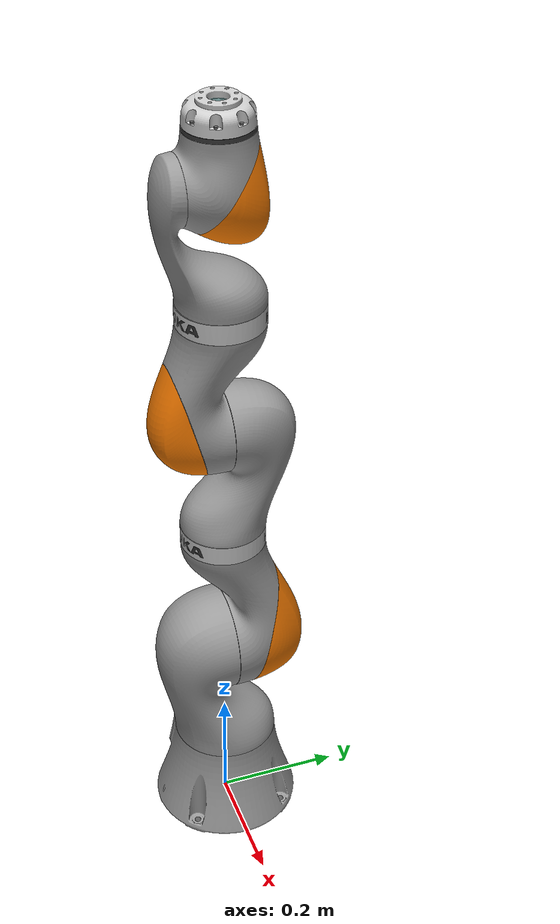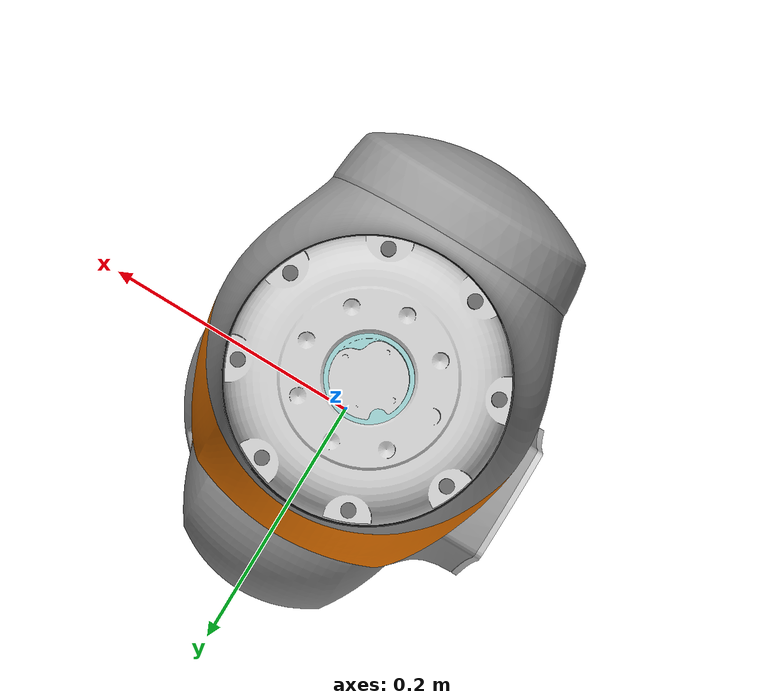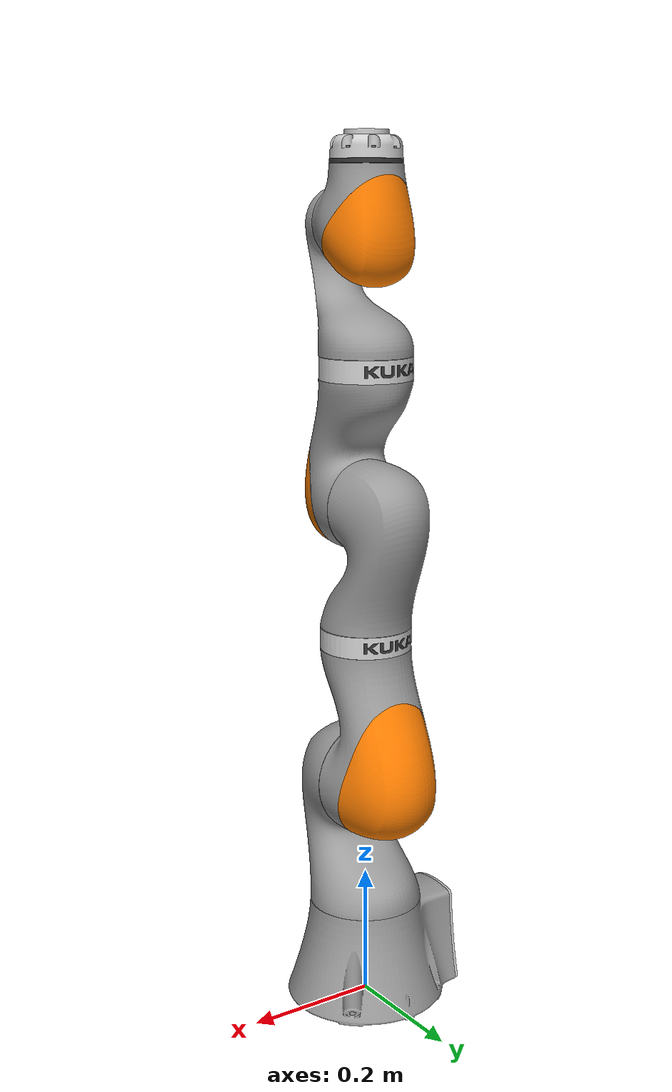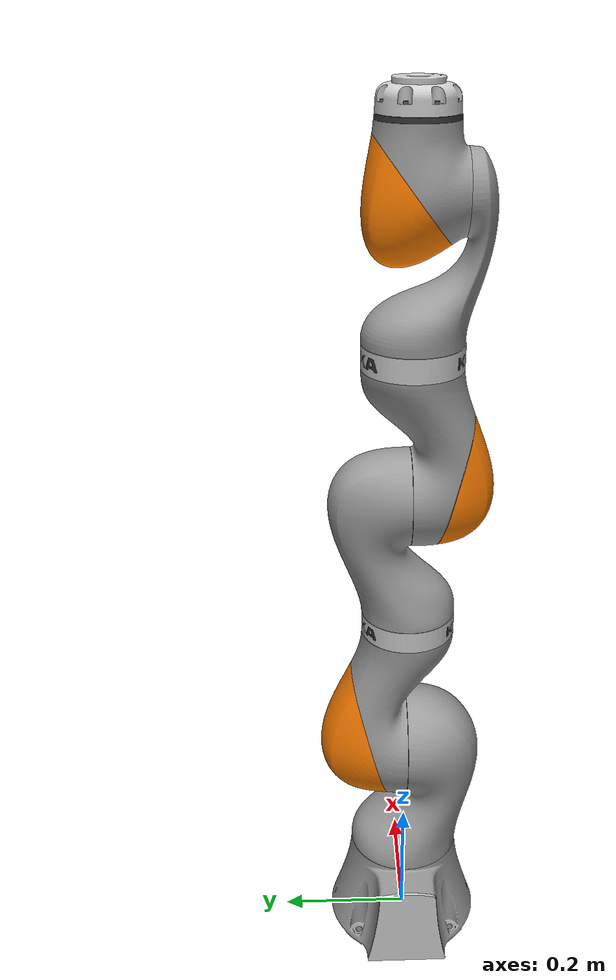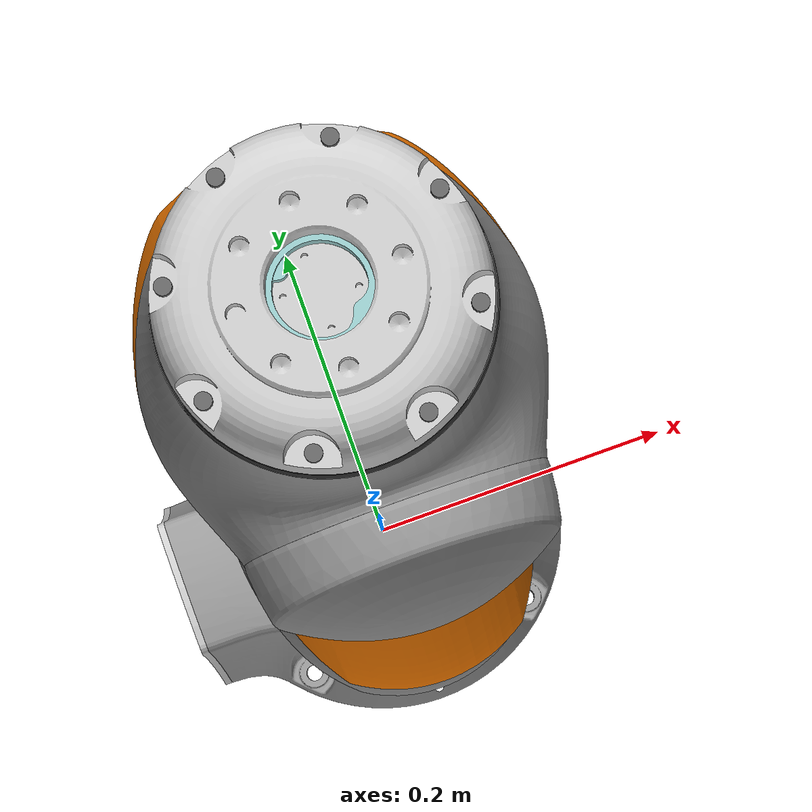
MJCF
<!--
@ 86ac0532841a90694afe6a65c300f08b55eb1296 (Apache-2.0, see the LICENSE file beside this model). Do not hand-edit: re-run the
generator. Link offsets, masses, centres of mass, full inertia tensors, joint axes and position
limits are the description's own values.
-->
<mujoco model="lbr_iiwa14">
  <compiler angle="radian" meshdir="meshes" autolimits="true"/>

  <default>
    <default class="lbr_iiwa14">
      <default class="shoulder">
        <joint damping="20" armature="0.5"/>
        <position kp="10000" kv="300"/>
      </default>
      <default class="elbow">
        <joint damping="10" armature="0.3"/>
        <position kp="6000" kv="150"/>
      </default>
      <default class="wrist">
        <joint damping="5" armature="0.2"/>
        <position kp="3000" kv="60"/>
      </default>
      <default class="hand">
        <joint damping="2" armature="0.1"/>
        <position kp="2000" kv="30"/>
      </default>
      <default class="visual">
        <geom type="mesh" contype="0" conaffinity="0" group="2" material="iiwa_default"/>
      </default>
      <default class="collision">
        <geom type="mesh" group="3" rgba="0.6 0.1 0.1 0.35"/>
      </default>
      <site size="0.005" rgba="0.5 0.5 0.5 0.3" group="4"/>
    </default>
  </default>

  <asset>
    <material name="iiwa_default" rgba="0.75 0.75 0.75 1"/>
    <material name="mat_link_0_visual_0" rgba="0.6 0.6 0.6 1"/>
    <material name="mat_link_0_visual_1" rgba="0.8 0.8 0.8 1"/>
    <material name="mat_link_1_visual_0" rgba="0.6 0.6 0.6 1"/>
    <material name="mat_link_2_visual_0" rgba="0.6 0.6 0.6 1"/>
    <material name="mat_link_2_visual_1" rgba="1 0.498 0 1"/>
    <material name="mat_link_2_visual_2" rgba="0.8 0.8 0.8 1"/>
    <material name="mat_link_2_visual_3" rgba="0.2 0.2 0.2 1"/>
    <material name="mat_link_3_visual_0" rgba="0.6 0.6 0.6 1"/>
    <material name="mat_link_4_visual_0" rgba="0.6 0.6 0.6 1"/>
    <material name="mat_link_4_visual_1" rgba="1 0.498 0 1"/>
    <material name="mat_link_4_visual_2" rgba="0.8 0.8 0.8 1"/>
    <material name="mat_link_4_visual_3" rgba="0.2 0.2 0.2 1"/>
    <material name="mat_link_5_visual_0" rgba="0.6 0.6 0.6 1"/>
    <material name="mat_link_6_visual_0" rgba="0.6 0.6 0.6 1"/>
    <material name="mat_link_6_visual_1" rgba="1 0.498 0 1"/>
    <material name="mat_link_6_visual_2" rgba="0.2 0.2 0.2 1"/>
    <material name="mat_link_7_visual_0" rgba="0.8 0.8 0.8 1"/>
    <material name="mat_link_7_visual_1" rgba="0.4 0.4 0.4 1"/>
    <material name="mat_link_7_visual_2" rgba="0.6 0.8 0.8 1"/>
    <mesh file="link_0_visual_0.obj"/>
    <mesh file="link_0_visual_1.obj"/>
    <mesh file="link_1_visual_0.obj"/>
    <mesh file="link_2_visual_0.obj"/>
    <mesh file="link_2_visual_1.obj"/>
    <mesh file="link_2_visual_2.obj"/>
    <mesh file="link_2_visual_3.obj"/>
    <mesh file="link_3_visual_0.obj"/>
    <mesh file="link_4_visual_0.obj"/>
    <mesh file="link_4_visual_1.obj"/>
    <mesh file="link_4_visual_2.obj"/>
    <mesh file="link_4_visual_3.obj"/>
    <mesh file="link_5_visual_0.obj"/>
    <mesh file="link_6_visual_0.obj"/>
    <mesh file="link_6_visual_1.obj"/>
    <mesh file="link_6_visual_2.obj"/>
    <mesh file="link_7_visual_0.obj"/>
    <mesh file="link_7_visual_1.obj"/>
    <mesh file="link_7_visual_2.obj"/>
    <mesh file="link_0_collision.stl"/>
    <mesh file="link_1_collision.stl"/>
    <mesh file="link_2_collision.stl"/>
    <mesh file="link_3_collision.stl"/>
    <mesh file="link_4_collision.stl"/>
    <mesh file="link_5_collision.stl"/>
    <mesh file="link_6_collision.stl"/>
    <mesh file="link_7_collision.stl"/>
  </asset>

  <worldbody>
    <body name="link_0" childclass="lbr_iiwa14">
      <inertial pos="-0.012822 0.0 0.071507" mass="7.050378" fullinertia="0.031226 0.039697 0.043102 0.0 0.000871 0.0"/>
      <geom class="visual" mesh="link_0_visual_0" pos="0 0 0" material="mat_link_0_visual_0"/>
      <geom class="visual" mesh="link_0_visual_1" pos="0 0 0" material="mat_link_0_visual_1"/>
      <geom class="collision" mesh="link_0_collision" pos="0 0 0"/>
      <body name="link_1" pos="0 0 0.1475">
        <inertial pos="0.0 -0.033795 0.132404" mass="5.289529" fullinertia="0.042462 0.042838 0.01587 0.0 0.0 0.006341"/>
        <joint name="A1" class="shoulder" axis="0 0 1" range="-2.96706 2.96706"/>
        <geom class="visual" mesh="link_1_visual_0" pos="0 0 -0.1475" material="mat_link_1_visual_0"/>
        <geom class="collision" mesh="link_1_collision" pos="0 0 -0.1475"/>
        <body name="link_2" pos="0 -0.01 0.2125">
          <inertial pos="0.000136 0.047548 0.076322" mass="5.688888" fullinertia="0.055182 0.053983 0.016523 -3.3e-05 5.6e-05 0.010034"/>
          <joint name="A2" class="shoulder" axis="0 1 0" range="-2.0944 2.0944"/>
          <geom class="visual" mesh="link_2_visual_0" pos="0 0.01 -0.36" material="mat_link_2_visual_0"/>
          <geom class="visual" mesh="link_2_visual_1" pos="0 0.01 -0.36" material="mat_link_2_visual_1"/>
          <geom class="visual" mesh="link_2_visual_2" pos="0 0.01 -0.36" material="mat_link_2_visual_2"/>
          <geom class="visual" mesh="link_2_visual_3" pos="0 0.01 -0.36" material="mat_link_2_visual_3"/>
          <geom class="collision" mesh="link_2_collision" pos="0 0.01 -0.36"/>
          <body name="link_3" pos="0 0.01 0.228">
            <inertial pos="0.0 0.034913 0.123108" mass="3.461245" fullinertia="0.02172 0.02073 0.007701 0.0 0.0 -0.003845"/>
            <joint name="A3" class="elbow" axis="0 0 1" range="-2.96706 2.96706"/>
            <geom class="visual" mesh="link_3_visual_0" pos="0 0 -0.588" material="mat_link_3_visual_0"/>
            <geom class="collision" mesh="link_3_collision" pos="0 0 -0.588"/>
            <body name="link_4" pos="0 0.0105 0.192">
              <inertial pos="0.0 -0.039793 0.086944" mass="4.122995" fullinertia="0.03241 0.030758 0.009883 0.0 0.0 -0.006022"/>
              <joint name="A4" class="elbow" axis="0 -1 0" range="-2.0944 2.0944"/>
              <geom class="visual" mesh="link_4_visual_0" pos="0 -0.0105 -0.78" material="mat_link_4_visual_0"/>
              <geom class="visual" mesh="link_4_visual_1" pos="0 -0.0105 -0.78" material="mat_link_4_visual_1"/>
              <geom class="visual" mesh="link_4_visual_2" pos="0 -0.0105 -0.78" material="mat_link_4_visual_2"/>
              <geom class="visual" mesh="link_4_visual_3" pos="0 -0.0105 -0.78" material="mat_link_4_visual_3"/>
              <geom class="collision" mesh="link_4_collision" pos="0 -0.0105 -0.78"/>
              <body name="link_5" pos="0 -0.0105 0.2075">
                <inertial pos="0.0 -0.029824 0.076267" mass="1.563756" fullinertia="0.008677 0.007297 0.003935 0.0 0.0 0.002869"/>
                <joint name="A5" class="wrist" axis="0 0 1" range="-2.96706 2.96706"/>
                <geom class="visual" mesh="link_5_visual_0" pos="0 0 -0.9875" material="mat_link_5_visual_0"/>
                <geom class="collision" mesh="link_5_collision" pos="0 0 -0.9875"/>
                <body name="link_6" pos="0 -0.0707 0.1925">
                  <inertial pos="0.0 0.07102 0.00495" mass="2.457878" fullinertia="0.007227 0.006958 0.004734 0.0 0.0 0.000318"/>
                  <joint name="A6" class="hand" axis="0 1 0" range="-2.0944 2.0944"/>
                  <geom class="visual" mesh="link_6_visual_0" pos="0 0.0707 -1.18" material="mat_link_6_visual_0"/>
                  <geom class="visual" mesh="link_6_visual_1" pos="0 0.0707 -1.18" material="mat_link_6_visual_1"/>
                  <geom class="visual" mesh="link_6_visual_2" pos="0 0.0707 -1.18" material="mat_link_6_visual_2"/>
                  <geom class="collision" mesh="link_6_collision" pos="0 0.0707 -1.18"/>
                  <body name="link_7" pos="0 0.0707 0.091">
                    <inertial pos="3.0000e-06 -2.0000e-06 1.3782e-02" mass="0.265331" fullinertia="0.000175 0.000175 0.000306 0.0 0.0 0.0"/>
                    <joint name="A7" class="hand" axis="0 0 1" range="-3.05433 3.05433"/>
                    <geom class="visual" mesh="link_7_visual_0" pos="0 0 -1.271" material="mat_link_7_visual_0"/>
                    <geom class="visual" mesh="link_7_visual_1" pos="0 0 -1.271" material="mat_link_7_visual_1"/>
                    <geom class="visual" mesh="link_7_visual_2" pos="0 0 -1.271" material="mat_link_7_visual_2"/>
                    <geom class="collision" mesh="link_7_collision" pos="0 0 -1.271"/>
                    <site name="attachment_site" pos="0 0 0.035"/>
                  </body>
                </body>
              </body>
            </body>
          </body>
        </body>
      </body>
    </body>
  </worldbody>

  <contact>
    <exclude body1="link_0" body2="link_1"/>
    <exclude body1="link_1" body2="link_2"/>
    <exclude body1="link_2" body2="link_3"/>
    <exclude body1="link_3" body2="link_4"/>
    <exclude body1="link_4" body2="link_5"/>
    <exclude body1="link_5" body2="link_6"/>
    <exclude body1="link_6" body2="link_7"/>
    <exclude body1="link_5" body2="link_7"/>
  </contact>

  <actuator>
    <position class="shoulder" name="A1" joint="A1" ctrlrange="-2.96706 2.96706" forcerange="-320 320"/>
    <position class="shoulder" name="A2" joint="A2" ctrlrange="-2.0944 2.0944" forcerange="-320 320"/>
    <position class="elbow" name="A3" joint="A3" ctrlrange="-2.96706 2.96706" forcerange="-176 176"/>
    <position class="elbow" name="A4" joint="A4" ctrlrange="-2.0944 2.0944" forcerange="-176 176"/>
    <position class="wrist" name="A5" joint="A5" ctrlrange="-2.96706 2.96706" forcerange="-110 110"/>
    <position class="hand" name="A6" joint="A6" ctrlrange="-2.0944 2.0944" forcerange="-40 40"/>
    <position class="hand" name="A7" joint="A7" ctrlrange="-3.05433 3.05433" forcerange="-40 40"/>
  </actuator>

  <keyframe>
    <!-- Elbow bent over the workspace: A2 30 deg forward, A4 -60 deg, A6 60 deg, which keeps the
         flange in front of and above the base, clear of the joint limits. -->
    <key name="home" qpos="0 0.523599 0 -1.0472 0 1.0472 0" ctrl="0 0.523599 0 -1.0472 0 1.0472 0"/>
  </keyframe>
</mujoco>
